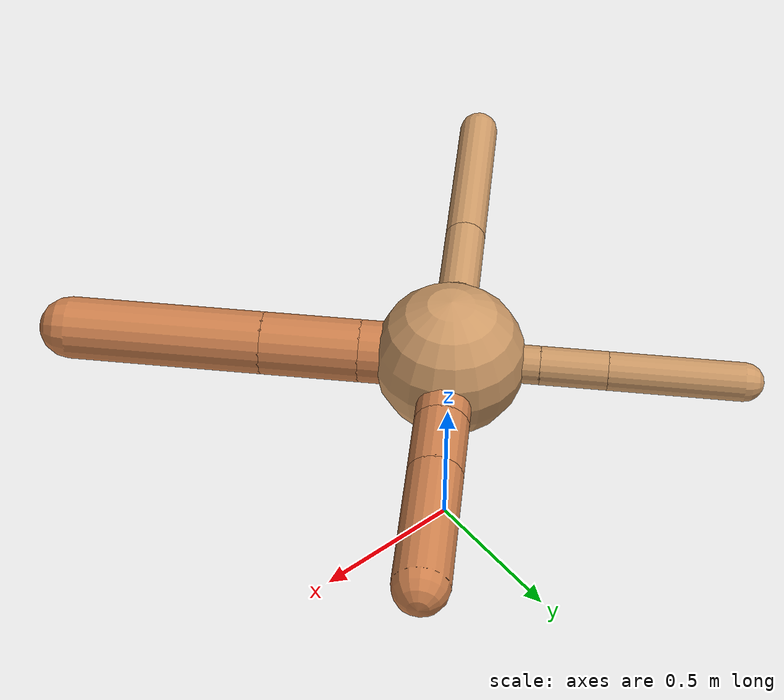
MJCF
<?xml version="1.0" ?>
<mujoco model="ant">

	<compiler angle="degree" coordinate="local" inertiafromgeom="true"/>

	<option integrator="RK4" timestep="0.01"/>

	<custom>

		<numeric data="0.0 0.0 0.55 1.0 0.0 0.0 0.0 0.0 1.0 0.0 -1.0 0.0 -1.0 0.0 1.0" name="init_qpos"/>

	</custom>

	<default>

		<joint armature="1" damping="1" limited="true"/>

		<geom conaffinity="0" condim="3" density="5.0" friction="1.5 0.1 0.1" margin="0.01" rgba="0.8 0.6 0.4 1"/>

	</default>

	<worldbody>

		<body name="torso" pos="0 0 0.75">

			<geom name="torso_geom" pos="0 0 0" size="0.24053249622202838" type="sphere"/>

			<!--joint armature="0" damping="0" limited="false" margin="0.01" name="root" pos="0 0 0" type="free"/-->

			<body name="front_left_leg" pos="0 0 0">

				<geom fromto="0 0 0 0.2 0.2 0" name="aux_1_geom" size="0.08541649738954567" type="capsule" rgba=".8 .5 .3 1"/>

				<body name="aux_1" pos="0.2 0.2 0">

					<joint axis="0 0 1" name="hip_1" pos="0.0 0.0 0.0" range="-40 40" type="hinge"/>

					<geom fromto="0 0 0 0.14326159698838867 0.14326159698838867 0" name="left_leg_geom" size="0.08541649738954567" type="capsule" rgba=".8 .5 .3 1"/>

					<body pos="0.14326159698838867 0.14326159698838867 0" name="front_left_foot">

						<joint axis="-1 1 0" name="ankle_1" pos="0.0 0.0 0.0" range="30 100" type="hinge"/>

						<geom fromto="0 0 0 0.28652319397677734 0.28652319397677734 0" name="left_ankle_geom" size="0.08541649738954567" type="capsule" rgba=".8 .5 .3 1"/>

					</body>

				</body>

			</body>

			<body name="front_right_leg" pos="0 0 0">

				<geom fromto="0 0 0 -0.2 0.2 0" name="aux_2_geom" size="0.060942036313271365" type="capsule"/>

				<body name="aux_2" pos="-0.2 0.2 0">

					<joint axis="0 0 1" name="hip_2" pos="0.0 0.0 0.0" range="-40 40" type="hinge"/>

					<geom fromto="0 0 0 -0.14922147783460946 0.14922147783460946 0" name="right_leg_geom" size="0.060942036313271365" type="capsule"/>

					<body pos="-0.14922147783460946 0.14922147783460946 0" name="front_right_foot">

						<joint axis="1 1 0" name="ankle_2" pos="0.0 0.0 0.0" range="-100 -30" type="hinge"/>

						<geom fromto="0 0 0 -0.2984429556692189 0.2984429556692189 0" name="right_ankle_geom" size="0.060942036313271365" type="capsule"/>

					</body>

				</body>

			</body>

			<body name="left_back_leg" pos="0 0 0">

				<geom fromto="0 0 0 -0.2 -0.2 0" name="aux_3_geom" size="0.06727030672423476" type="capsule"/>

				<body name="aux_3" pos="-0.2 -0.2 0">

					<joint axis="0 0 1" name="hip_3" pos="0.0 0.0 0.0" range="-40 40" type="hinge"/>

					<geom fromto="0 0 0 -0.2125547458119541 -0.2125547458119541 0" name="back_leg_geom" size="0.06727030672423476" type="capsule"/>

					<body pos="-0.2125547458119541 -0.2125547458119541 0" name="left_back_foot">

						<joint axis="-1 1 0" name="ankle_3" pos="0.0 0.0 0.0" range="-100 -30" type="hinge"/>

						<geom fromto="0 0 0 -0.4251094916239082 -0.4251094916239082 0" name="third_ankle_geom" size="0.06727030672423476" type="capsule"/>

					</body>

				</body>

			</body>

			<body name="right_back_leg" pos="0 0 0">

				<geom fromto="0 0 0 0.2 -0.2 0" name="aux_4_geom" size="0.09927433715236114" type="capsule" rgba=".8 .5 .3 1"/>

				<body name="aux_4" pos="0.2 -0.2 0">

					<joint axis="0 0 1" name="hip_4" pos="0.0 0.0 0.0" range="-40 40" type="hinge"/>

					<geom fromto="0 0 0 0.22081314689307674 -0.22081314689307674 0" name="rightback_leg_geom" size="0.09927433715236114" type="capsule" rgba=".8 .5 .3 1"/>

					<body pos="0.22081314689307674 -0.22081314689307674 0" name="right_back_foot">

						<joint axis="1 1 0" name="ankle_4" pos="0.0 0.0 0.0" range="30 100" type="hinge"/>

						<geom fromto="0 0 0 0.4416262937861535 -0.4416262937861535 0" name="fourth_ankle_geom" size="0.09927433715236114" type="capsule" rgba=".8 .5 .3 1"/>

					</body>

				</body>

			</body>

		</body>

	</worldbody>

	<actuator>

		<motor ctrllimited="true" ctrlrange="-1.0 1.0" joint="hip_4" gear="150"/>

		<motor ctrllimited="true" ctrlrange="-1.0 1.0" joint="ankle_4" gear="150"/>

		<motor ctrllimited="true" ctrlrange="-1.0 1.0" joint="hip_1" gear="150"/>

		<motor ctrllimited="true" ctrlrange="-1.0 1.0" joint="ankle_1" gear="150"/>

		<motor ctrllimited="true" ctrlrange="-1.0 1.0" joint="hip_2" gear="150"/>

		<motor ctrllimited="true" ctrlrange="-1.0 1.0" joint="ankle_2" gear="150"/>

		<motor ctrllimited="true" ctrlrange="-1.0 1.0" joint="hip_3" gear="150"/>

		<motor ctrllimited="true" ctrlrange="-1.0 1.0" joint="ankle_3" gear="150"/>

	</actuator>

</mujoco>
